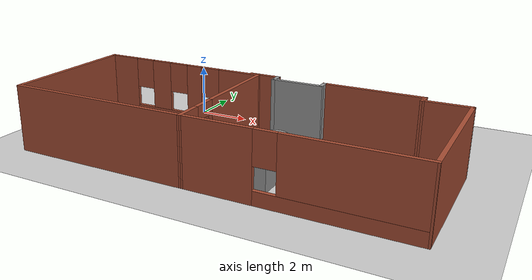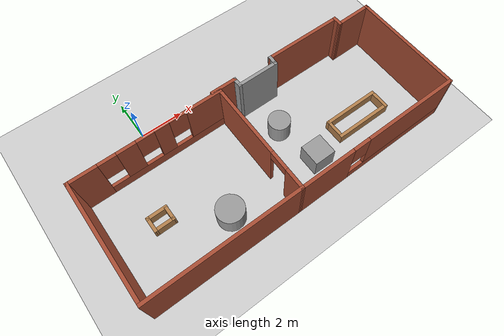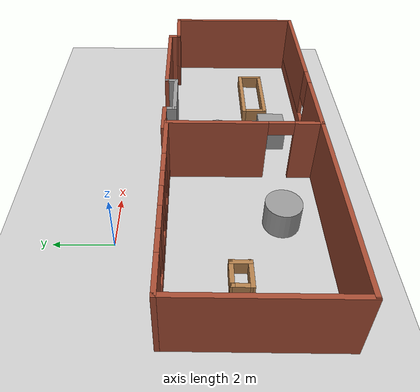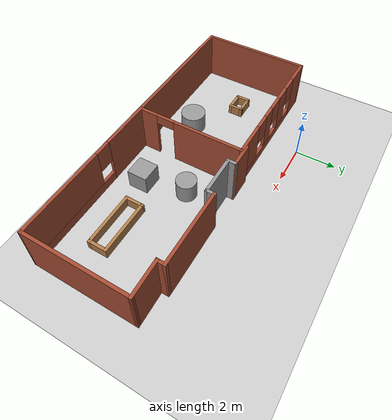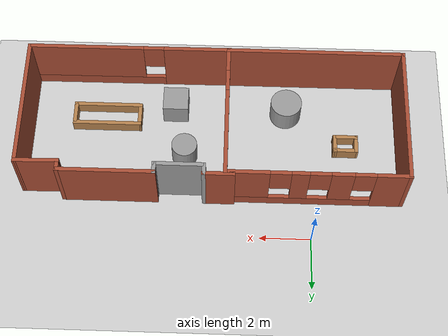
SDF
<sdf version="1.5">
 <world name="default">
  <light name="sun" type="directional">
   <pose>0 0 10 0 -0 0</pose>
   <diffuse>0.8 0.8 0.8 1</diffuse>
   <specular>0.2 0.2 0.2 1</specular>
   <attenuation>
    <range>1000</range>
    <constant>0.9</constant>
    <linear>0.01</linear>
    <quadratic>0.001</quadratic>
   </attenuation>
   <direction>-0.5 0.1 -0.9</direction>
  </light>
  <model name="ground_plane">
   <static>1</static>
   <link name="link">
    <collision name="collision">
     <geometry><plane><normal>0 0 1</normal><size>100 100</size></plane></geometry>
     <surface><friction><ode><mu>100</mu><mu2>50</mu2></ode></friction></surface>
    </collision>
    <visual name="visual">
     <cast_shadows>0</cast_shadows>
     <geometry><plane><normal>0 0 1</normal><size>100 100</size></plane></geometry>
     <material>
      <script><uri>file://media/materials/scripts/gazebo.material</uri><name>Gazebo/Grey</name></script>
     </material>
    </visual>
   </link>
  </model>
  <physics name="default_physics" default="0" type="ode">
   <max_step_size>0.001</max_step_size>
   <real_time_factor>1</real_time_factor>
   <real_time_update_rate>1000</real_time_update_rate>
   <gravity>0 0 -9.8</gravity>
   <magnetic_field>5.5645e-06 2.28758e-05 -4.23884e-05</magnetic_field>
  </physics>
  <scene><ambient>0.4 0.4 0.4 1</ambient><background>0.7 0.7 0.7 1</background><shadows>1</shadows></scene>
  <spherical_coordinates>
   <surface_model>EARTH_WGS84</surface_model>
   <latitude_deg>0</latitude_deg>
   <longitude_deg>0</longitude_deg>
   <elevation>0</elevation>
   <heading_deg>0</heading_deg>
  </spherical_coordinates>
  <model name="ktM_building">
   <link name="Wall_10">
    <pose>-0.500552 -0.049876 0 0 -0 1.5708</pose>
    <visual name="Wall_10_Visual_0">
     <pose>-2.24128 0 1.25 0 -0 0</pose>
     <geometry><box><size>1.01743 0.15 2.5</size></box></geometry>
     <material>
      <script><uri>file://media/materials/scripts/gazebo.material</uri><name>Gazebo/Bricks</name></script>
      <ambient>1 1 1 1</ambient>
     </material>
    </visual>
    <collision name="Wall_10_Collision_0">
     <geometry><box><size>1.01743 0.15 2.5</size></box></geometry>
     <pose>-2.24128 0 1.25 0 -0 0</pose>
    </collision>
    <visual name="Wall_10_Visual_1">
     <pose>0.958717 0 1.25 0 -0 0</pose>
     <geometry><box><size>3.58257 0.15 2.5</size></box></geometry>
     <material>
      <script><uri>file://media/materials/scripts/gazebo.material</uri><name>Gazebo/Bricks</name></script>
      <ambient>1 1 1 1</ambient>
     </material>
    </visual>
    <collision name="Wall_10_Collision_1">
     <geometry><box><size>3.58257 0.15 2.5</size></box></geometry>
     <pose>0.958717 0 1.25 0 -0 0</pose>
    </collision>
    <visual name="Wall_10_Visual_2">
     <pose>-1.28257 0 2.25 0 -0 0</pose>
     <geometry><box><size>0.9 0.15 0.5</size></box></geometry>
     <material>
      <script><uri>file://media/materials/scripts/gazebo.material</uri><name>Gazebo/Bricks</name></script>
      <ambient>1 1 1 1</ambient>
     </material>
    </visual>
    <collision name="Wall_10_Collision_2">
     <geometry><box><size>0.9 0.15 0.5</size></box></geometry>
     <pose>-1.28257 0 2.25 0 -0 0</pose>
    </collision>
   </link>
   <link name="Wall_13">
    <pose>3.42445 -2.71188 0 0 -0 0.003312</pose>
    <visual name="Wall_13_Visual_0">
     <pose>-2.6834 0 1.25 0 -0 0</pose>
     <geometry><box><size>2.6332 0.15 2.5</size></box></geometry>
     <material>
      <script><uri>file://media/materials/scripts/gazebo.material</uri><name>Gazebo/Bricks</name></script>
      <ambient>1 1 1 1</ambient>
     </material>
    </visual>
    <collision name="Wall_13_Collision_0">
     <geometry><box><size>2.6332 0.15 2.5</size></box></geometry>
     <pose>-2.6834 0 1.25 0 -0 0</pose>
    </collision>
    <visual name="Wall_13_Visual_1">
     <pose>1.3166 0 0.25 0 -0 0</pose>
     <geometry><box><size>5.3668 0.15 0.5</size></box></geometry>
     <material>
      <script><uri>file://media/materials/scripts/gazebo.material</uri><name>Gazebo/Bricks</name></script>
      <ambient>1 1 1 1</ambient>
     </material>
    </visual>
    <collision name="Wall_13_Collision_1">
     <geometry><box><size>5.3668 0.15 0.5</size></box></geometry>
     <pose>1.3166 0 0.25 0 -0 0</pose>
    </collision>
    <visual name="Wall_13_Visual_2">
     <pose>1.7166 0 1.5 0 -0 0</pose>
     <geometry><box><size>4.5668 0.15 2</size></box></geometry>
     <material>
      <script><uri>file://media/materials/scripts/gazebo.material</uri><name>Gazebo/Bricks</name></script>
      <ambient>1 1 1 1</ambient>
     </material>
    </visual>
    <collision name="Wall_13_Collision_2">
     <geometry><box><size>4.5668 0.15 2</size></box></geometry>
     <pose>1.7166 0 1.5 0 -0 0</pose>
    </collision>
    <visual name="Wall_13_Visual_3">
     <pose>-0.966801 0 1.9 0 -0 0</pose>
     <geometry><box><size>0.8 0.15 1.2</size></box></geometry>
     <material>
      <script><uri>file://media/materials/scripts/gazebo.material</uri><name>Gazebo/Bricks</name></script>
      <ambient>1 1 1 1</ambient>
     </material>
    </visual>
    <collision name="Wall_13_Collision_3">
     <geometry><box><size>0.8 0.15 1.2</size></box></geometry>
     <pose>-0.966801 0 1.9 0 -0 0</pose>
    </collision>
   </link>
   <link name="Wall_14">
    <collision name="Wall_14_Collision">
     <geometry><box><size>5.25 0.15 2.5</size></box></geometry>
     <pose>0 0 1.25 0 -0 0</pose>
    </collision>
    <visual name="Wall_14_Visual">
     <pose>0 0 1.25 0 -0 0</pose>
     <geometry><box><size>5.25 0.15 2.5</size></box></geometry>
     <material>
      <script><uri>file://media/materials/scripts/gazebo.material</uri><name>Gazebo/Bricks</name></script>
      <ambient>1 1 1 1</ambient>
     </material>
    </visual>
    <pose>7.34945 -0.148876 0 0 -0 1.5708</pose>
   </link>
   <link name="Wall_15">
    <collision name="Wall_15_Collision">
     <geometry><box><size>1.75 0.15 2.5</size></box></geometry>
     <pose>0 0 1.25 0 -0 0</pose>
    </collision>
    <visual name="Wall_15_Visual">
     <pose>0 0 1.25 0 -0 0</pose>
     <geometry><box><size>1.75 0.15 2.5</size></box></geometry>
     <material>
      <script><uri>file://media/materials/scripts/gazebo.material</uri><name>Gazebo/Bricks</name></script>
      <ambient>1 1 1 1</ambient>
     </material>
    </visual>
    <pose>6.54945 2.38812 0 0 0 -3.12534</pose>
   </link>
   <link name="Wall_16">
    <collision name="Wall_16_Collision">
     <geometry><box><size>0.5 0.15 2.5</size></box></geometry>
     <pose>0 0 1.25 0 -0 0</pose>
    </collision>
    <visual name="Wall_16_Visual">
     <pose>0 0 1.25 0 -0 0</pose>
     <geometry><box><size>0.5 0.15 2.5</size></box></geometry>
     <material>
      <script><uri>file://media/materials/scripts/gazebo.material</uri><name>Gazebo/Bricks</name></script>
      <ambient>1 1 1 1</ambient>
     </material>
    </visual>
    <pose>5.74945 2.55012 0 0 -0 1.5708</pose>
   </link>
   <link name="Wall_17">
    <collision name="Wall_17_Collision">
     <geometry><box><size>3.75 0.15 2.5</size></box></geometry>
     <pose>0 0 1.25 0 -0 0</pose>
    </collision>
    <visual name="Wall_17_Visual">
     <pose>0 0 1.25 0 -0 0</pose>
     <geometry><box><size>3.75 0.15 2.5</size></box></geometry>
     <material>
      <script><uri>file://media/materials/scripts/gazebo.material</uri><name>Gazebo/Bricks</name></script>
      <ambient>1 1 1 1</ambient>
     </material>
    </visual>
    <pose>3.94945 2.72512 0 0 -0 3.14159</pose>
   </link>
   <link name="Wall_18">
    <collision name="Wall_18_Collision">
     <geometry><box><size>0.5 0.15 2.5</size></box></geometry>
     <pose>0 0 1.25 0 -0 0</pose>
    </collision>
    <visual name="Wall_18_Visual">
     <pose>0 0 1.25 0 -0 0</pose>
     <geometry><box><size>0.5 0.15 2.5</size></box></geometry>
     <material>
      <script><uri>file://media/materials/scripts/gazebo.material</uri><name>Gazebo/Grey</name></script>
      <ambient>1 1 1 1</ambient>
     </material>
    </visual>
    <pose>2.14945 2.55012 0 0 0 -1.5708</pose>
   </link>
   <link name="Wall_19">
    <collision name="Wall_19_Collision">
     <geometry><box><size>2 0.15 2.5</size></box></geometry>
     <pose>0 0 1.25 0 -0 0</pose>
    </collision>
    <visual name="Wall_19_Visual">
     <pose>0 0 1.25 0 -0 0</pose>
     <geometry><box><size>2 0.15 2.5</size></box></geometry>
     <material>
      <script><uri>file://media/materials/scripts/gazebo.material</uri><name>Gazebo/Grey</name></script>
      <ambient>1 1 1 1</ambient>
     </material>
    </visual>
    <pose>1.22445 2.37512 0 0 -0 3.14159</pose>
   </link>
   <link name="Wall_2">
    <pose>-3.92555 2.62512 0 0 -0 0</pose>
    <visual name="Wall_2_Visual_0">
     <pose>-2.83498 0 1.25 0 -0 0</pose>
     <geometry><box><size>1.33004 0.15 2.5</size></box></geometry>
     <material>
      <script><uri>file://media/materials/scripts/gazebo.material</uri><name>Gazebo/Bricks</name></script>
      <ambient>1 1 1 1</ambient>
     </material>
    </visual>
    <collision name="Wall_2_Collision_0">
     <geometry><box><size>1.33004 0.15 2.5</size></box></geometry>
     <pose>-2.83498 0 1.25 0 -0 0</pose>
    </collision>
    <visual name="Wall_2_Visual_1">
     <pose>0.66502 0 0.25 0 -0 0</pose>
     <geometry><box><size>5.66996 0.15 0.5</size></box></geometry>
     <material>
      <script><uri>file://media/materials/scripts/gazebo.material</uri><name>Gazebo/Bricks</name></script>
      <ambient>1 1 1 1</ambient>
     </material>
    </visual>
    <collision name="Wall_2_Collision_1">
     <geometry><box><size>5.66996 0.15 0.5</size></box></geometry>
     <pose>0.66502 0 0.25 0 -0 0</pose>
    </collision>
    <visual name="Wall_2_Visual_2">
     <pose>-0.941489 0 1.5 0 -0 0</pose>
     <geometry><box><size>0.856941 0.15 2</size></box></geometry>
     <material>
      <script><uri>file://media/materials/scripts/gazebo.material</uri><name>Gazebo/Bricks</name></script>
      <ambient>1 1 1 1</ambient>
     </material>
    </visual>
    <collision name="Wall_2_Collision_2">
     <geometry><box><size>0.856941 0.15 2</size></box></geometry>
     <pose>-0.941489 0 1.5 0 -0 0</pose>
    </collision>
    <visual name="Wall_2_Visual_3">
     <pose>0.6234 0 1.5 0 -0 0</pose>
     <geometry><box><size>0.672836 0.15 2</size></box></geometry>
     <material>
      <script><uri>file://media/materials/scripts/gazebo.material</uri><name>Gazebo/Bricks</name></script>
      <ambient>1 1 1 1</ambient>
     </material>
    </visual>
    <collision name="Wall_2_Collision_3">
     <geometry><box><size>0.672836 0.15 2</size></box></geometry>
     <pose>0.6234 0 1.5 0 -0 0</pose>
    </collision>
    <visual name="Wall_2_Visual_4">
     <pose>2.62991 0 1.5 0 -0 0</pose>
     <geometry><box><size>1.74018 0.15 2</size></box></geometry>
     <material>
      <script><uri>file://media/materials/scripts/gazebo.material</uri><name>Gazebo/Bricks</name></script>
      <ambient>1 1 1 1</ambient>
     </material>
    </visual>
    <collision name="Wall_2_Collision_4">
     <geometry><box><size>1.74018 0.15 2</size></box></geometry>
     <pose>2.62991 0 1.5 0 -0 0</pose>
    </collision>
    <visual name="Wall_2_Visual_5">
     <pose>-1.76996 0 1.9 0 -0 0</pose>
     <geometry><box><size>0.8 0.15 1.2</size></box></geometry>
     <material>
      <script><uri>file://media/materials/scripts/gazebo.material</uri><name>Gazebo/Bricks</name></script>
      <ambient>1 1 1 1</ambient>
     </material>
    </visual>
    <collision name="Wall_2_Collision_5">
     <geometry><box><size>0.8 0.15 1.2</size></box></geometry>
     <pose>-1.76996 0 1.9 0 -0 0</pose>
    </collision>
    <visual name="Wall_2_Visual_6">
     <pose>-0.113019 0 1.9 0 -0 0</pose>
     <geometry><box><size>0.8 0.15 1.2</size></box></geometry>
     <material>
      <script><uri>file://media/materials/scripts/gazebo.material</uri><name>Gazebo/Bricks</name></script>
      <ambient>1 1 1 1</ambient>
     </material>
    </visual>
    <collision name="Wall_2_Collision_6">
     <geometry><box><size>0.8 0.15 1.2</size></box></geometry>
     <pose>-0.113019 0 1.9 0 -0 0</pose>
    </collision>
    <visual name="Wall_2_Visual_7">
     <pose>1.35982 0 1.9 0 -0 0</pose>
     <geometry><box><size>0.8 0.15 1.2</size></box></geometry>
     <material>
      <script><uri>file://media/materials/scripts/gazebo.material</uri><name>Gazebo/Bricks</name></script>
      <ambient>1 1 1 1</ambient>
     </material>
    </visual>
    <collision name="Wall_2_Collision_7">
     <geometry><box><size>0.8 0.15 1.2</size></box></geometry>
     <pose>1.35982 0 1.9 0 -0 0</pose>
    </collision>
   </link>
   <link name="Wall_23">
    <collision name="Wall_23_Collision">
     <geometry><box><size>0.5 0.15 2.5</size></box></geometry>
     <pose>0 0 1.25 0 -0 0</pose>
    </collision>
    <visual name="Wall_23_Visual">
     <pose>0 0 1.25 0 -0 0</pose>
     <geometry><box><size>0.5 0.15 2.5</size></box></geometry>
     <material>
      <script><uri>file://media/materials/scripts/gazebo.material</uri><name>Gazebo/Grey</name></script>
      <ambient>1 1 1 1</ambient>
     </material>
    </visual>
    <pose>0.299448 2.55012 0 0 -0 1.5708</pose>
   </link>
   <link name="Wall_24">
    <collision name="Wall_24_Collision">
     <geometry><box><size>1.25 0.15 2.5</size></box></geometry>
     <pose>0 0 1.25 0 -0 0</pose>
    </collision>
    <visual name="Wall_24_Visual">
     <pose>0 0 1.25 0 -0 0</pose>
     <geometry><box><size>1.25 0.15 2.5</size></box></geometry>
     <material>
      <script><uri>file://media/materials/scripts/gazebo.material</uri><name>Gazebo/Bricks</name></script>
      <ambient>1 1 1 1</ambient>
     </material>
    </visual>
    <pose>-0.250552 2.72512 0 0 -0 3.14159</pose>
   </link>
   <link name="Wall_31">
    <collision name="Wall_31_Collision">
     <geometry><box><size>0.993 0.15 0.5</size></box></geometry>
     <pose>0 0 0.25 0 -0 0</pose>
    </collision>
    <visual name="Wall_31_Visual">
     <pose>0 0 0.25 0 -0 0</pose>
     <geometry><box><size>0.993 0.15 0.5</size></box></geometry>
     <material>
      <script><uri>file://media/materials/scripts/gazebo.material</uri><name>Gazebo/Wood</name></script>
      <ambient>1 1 1 1</ambient>
     </material>
    </visual>
    <pose>-5.23805 0.532355 0 0 -0 0.000548</pose>
   </link>
   <link name="Wall_32">
    <collision name="Wall_32_Collision">
     <geometry><box><size>0.75 0.15 0.5</size></box></geometry>
     <pose>0 0 0.25 0 -0 0</pose>
    </collision>
    <visual name="Wall_32_Visual">
     <pose>0 0 0.25 0 -0 0</pose>
     <geometry><box><size>0.75 0.15 0.5</size></box></geometry>
     <material>
      <script><uri>file://media/materials/scripts/gazebo.material</uri><name>Gazebo/Wood</name></script>
      <ambient>1 1 1 1</ambient>
     </material>
    </visual>
    <pose>-4.82309 0.232586 0 0 0 -1.5708</pose>
   </link>
   <link name="Wall_33">
    <collision name="Wall_33_Collision">
     <geometry><box><size>0.993 0.15 0.5</size></box></geometry>
     <pose>0 0 0.25 0 -0 0</pose>
    </collision>
    <visual name="Wall_33_Visual">
     <pose>0 0 0.25 0 -0 0</pose>
     <geometry><box><size>0.993 0.15 0.5</size></box></geometry>
     <material>
      <script><uri>file://media/materials/scripts/gazebo.material</uri><name>Gazebo/Wood</name></script>
      <ambient>1 1 1 1</ambient>
     </material>
    </visual>
    <pose>-5.23805 -0.067645 0 0 0 -3.14105</pose>
   </link>
   <link name="Wall_34">
    <collision name="Wall_34_Collision">
     <geometry><box><size>0.75 0.15 0.5</size></box></geometry>
     <pose>0 0 0.25 0 -0 0</pose>
    </collision>
    <visual name="Wall_34_Visual">
     <pose>0 0 0.25 0 -0 0</pose>
     <geometry><box><size>0.75 0.15 0.5</size></box></geometry>
     <material>
      <script><uri>file://media/materials/scripts/gazebo.material</uri><name>Gazebo/Wood</name></script>
      <ambient>1 1 1 1</ambient>
     </material>
    </visual>
    <pose>-5.65955 0.232124 0 0 -0 1.5708</pose>
   </link>
   <link name="Wall_36">
    <collision name="Wall_36_Collision">
     <geometry><box><size>2.75 0.15 0.5</size></box></geometry>
     <pose>0 0 0.25 0 -0 0</pose>
    </collision>
    <visual name="Wall_36_Visual">
     <pose>0 0 0.25 0 -0 0</pose>
     <geometry><box><size>2.75 0.15 0.5</size></box></geometry>
     <material>
      <script><uri>file://media/materials/scripts/gazebo.material</uri><name>Gazebo/Wood</name></script>
      <ambient>1 1 1 1</ambient>
     </material>
    </visual>
    <pose>4.31045 -0.437876 0 0 -0 0</pose>
   </link>
   <link name="Wall_37">
    <collision name="Wall_37_Collision">
     <geometry><box><size>1 0.15 0.5</size></box></geometry>
     <pose>0 0 0.25 0 -0 0</pose>
    </collision>
    <visual name="Wall_37_Visual">
     <pose>0 0 0.25 0 -0 0</pose>
     <geometry><box><size>1 0.15 0.5</size></box></geometry>
     <material>
      <script><uri>file://media/materials/scripts/gazebo.material</uri><name>Gazebo/Wood</name></script>
      <ambient>1 1 1 1</ambient>
     </material>
    </visual>
    <pose>5.61045 -0.862876 0 0 0 -1.5708</pose>
   </link>
   <link name="Wall_38">
    <collision name="Wall_38_Collision">
     <geometry><box><size>2.75 0.15 0.5</size></box></geometry>
     <pose>0 0 0.25 0 -0 0</pose>
    </collision>
    <visual name="Wall_38_Visual">
     <pose>0 0 0.25 0 -0 0</pose>
     <geometry><box><size>2.75 0.15 0.5</size></box></geometry>
     <material>
      <script><uri>file://media/materials/scripts/gazebo.material</uri><name>Gazebo/Wood</name></script>
      <ambient>1 1 1 1</ambient>
     </material>
    </visual>
    <pose>4.31045 -1.28788 0 0 -0 3.14159</pose>
   </link>
   <link name="Wall_40">
    <collision name="Wall_40_Collision">
     <geometry><box><size>1 0.15 0.5</size></box></geometry>
     <pose>0 0 0.25 0 -0 0</pose>
    </collision>
    <visual name="Wall_40_Visual">
     <pose>0 0 0.25 0 -0 0</pose>
     <geometry><box><size>1 0.15 0.5</size></box></geometry>
     <material>
      <script><uri>file://media/materials/scripts/gazebo.material</uri><name>Gazebo/Wood</name></script>
      <ambient>1 1 1 1</ambient>
     </material>
    </visual>
    <pose>3.01045 -0.862876 0 0 0 -1.5708</pose>
   </link>
   <link name="Wall_7">
    <collision name="Wall_7_Collision">
     <geometry><box><size>5.5 0.15 2.5</size></box></geometry>
     <pose>0 0 1.25 0 -0 0</pose>
    </collision>
    <visual name="Wall_7_Visual">
     <pose>0 0 1.25 0 -0 0</pose>
     <geometry><box><size>5.5 0.15 2.5</size></box></geometry>
     <material>
      <script><uri>file://media/materials/scripts/gazebo.material</uri><name>Gazebo/Bricks</name></script>
      <ambient>1 1 1 1</ambient>
     </material>
    </visual>
    <pose>-7.35055 -0.049876 0 0 0 -1.5708</pose>
   </link>
   <link name="Wall_9">
    <collision name="Wall_9_Collision">
     <geometry><box><size>7 0.15 2.5</size></box></geometry>
     <pose>0 0 1.25 0 -0 0</pose>
    </collision>
    <visual name="Wall_9_Visual">
     <pose>0 0 1.25 0 -0 0</pose>
     <geometry><box><size>7 0.15 2.5</size></box></geometry>
     <material>
      <script><uri>file://media/materials/scripts/gazebo.material</uri><name>Gazebo/Bricks</name></script>
      <ambient>1 1 1 1</ambient>
     </material>
    </visual>
    <pose>-3.92555 -2.72488 0 0 -0 0</pose>
   </link>
   <static>1</static>
   <pose>3.86055 -4.20512 0 0 -0 0</pose>
  </model>
  <model name="unit_cylinder_1">
   <pose>1 -5.47681 0.499992 0 -0 0</pose>
   <link name="link">
    <inertial>
     <mass>1</mass>
     <inertia><ixx>1</ixx><ixy>0</ixy><ixz>0</ixz><iyy>1</iyy><iyz>0</iyz><izz>1</izz></inertia>
    </inertial>
    <collision name="collision">
     <geometry><cylinder><radius>0.618134</radius><length>1</length></cylinder></geometry>
    </collision>
    <visual name="visual">
     <geometry><cylinder><radius>0.618134</radius><length>1</length></cylinder></geometry>
     <material>
      <script><uri>file://media/materials/scripts/gazebo.material</uri><name>Gazebo/Grey</name></script>
     </material>
    </visual>
   </link>
  </model>
  <model name="unit_cylinder_2">
   <pose>5 -3.45815 0.499998 1e-06 -0 0</pose>
   <link name="link">
    <inertial>
     <mass>1</mass>
     <inertia><ixx>1</ixx><ixy>0</ixy><ixz>0</ixz><iyy>1</iyy><iyz>0</iyz><izz>1</izz></inertia>
    </inertial>
    <collision name="collision">
     <geometry><cylinder><radius>0.5</radius><length>1</length></cylinder></geometry>
    </collision>
    <visual name="visual">
     <geometry><cylinder><radius>0.5</radius><length>1</length></cylinder></geometry>
     <material>
      <script><uri>file://media/materials/scripts/gazebo.material</uri><name>Gazebo/Grey</name></script>
     </material>
    </visual>
   </link>
  </model>
  <model name="unit_box_1">
   <pose>5.42591 -5.55612 0.5 0 -0 0</pose>
   <link name="link">
    <inertial>
     <mass>1</mass>
     <inertia><ixx>1</ixx><ixy>0</ixy><ixz>0</ixz><iyy>1</iyy><iyz>0</iyz><izz>1</izz></inertia>
    </inertial>
    <collision name="collision"><geometry><box><size>1 1 1</size></box></geometry></collision>
    <visual name="visual">
     <geometry><box><size>1 1 1</size></box></geometry>
     <material>
      <script><uri>file://media/materials/scripts/gazebo.material</uri><name>Gazebo/Grey</name></script>
     </material>
    </visual>
   </link>
  </model>
 </world>
</sdf>
